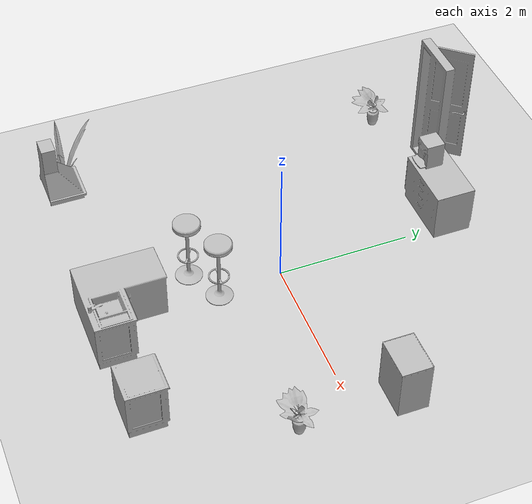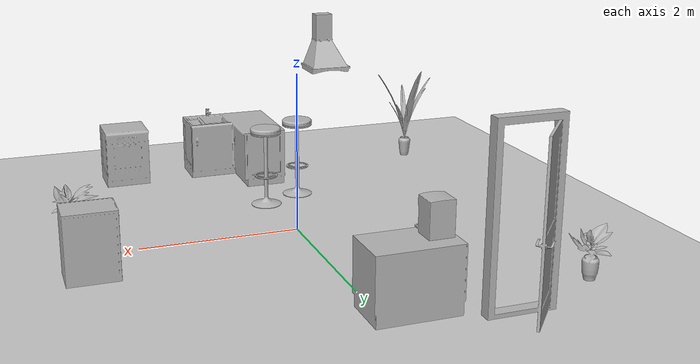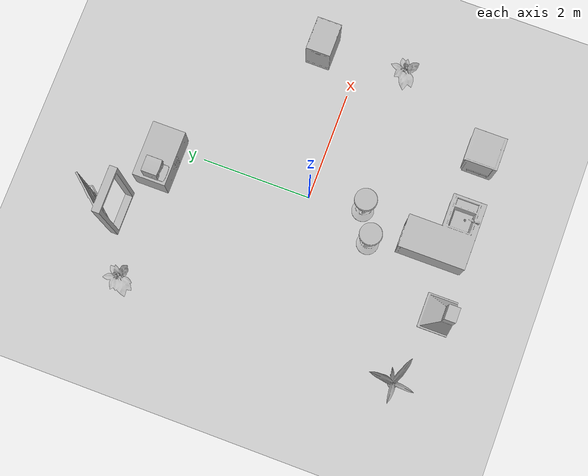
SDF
<sdf version="1.4">
 <world name="default">
  <light name="sun" type="directional">
   <pose>0 0 10 0 -0 0</pose>
   <diffuse>0.8 0.8 0.8 1</diffuse>
   <specular>0.2 0.2 0.2 1</specular>
   <attenuation>
    <range>1000</range>
    <constant>0.9</constant>
    <linear>0.01</linear>
    <quadratic>0.001</quadratic>
   </attenuation>
   <direction>-0.5 0.1 -0.9</direction>
  </light>
  <model name="ground_plane">
   <static>1</static>
   <link name="link">
    <collision name="collision">
     <geometry><plane><normal>0 0 1</normal><size>100 100</size></plane></geometry>
     <surface><friction><ode><mu>100</mu><mu2>50</mu2></ode></friction></surface>
    </collision>
    <visual name="visual">
     <cast_shadows>0</cast_shadows>
     <geometry><plane><normal>0 0 1</normal><size>100 100</size></plane></geometry>
     <material>
      <script><uri>file://media/materials/scripts/gazebo.material</uri><name>Gazebo/Grey</name></script>
     </material>
    </visual>
    <velocity_decay><linear>0</linear><angular>0</angular></velocity_decay>
   </link>
  </model>
  <physics type="ode">
   <max_step_size>0.001</max_step_size>
   <real_time_factor>1</real_time_factor>
   <real_time_update_rate>1000</real_time_update_rate>
   <gravity>0 0 -9.8</gravity>
  </physics>
  <scene><ambient>0.4 0.4 0.4 1</ambient><background>0.7 0.7 0.7 1</background><shadows>1</shadows></scene>
  <spherical_coordinates>
   <surface_model>EARTH_WGS84</surface_model>
   <latitude_deg>0</latitude_deg>
   <longitude_deg>0</longitude_deg>
   <elevation>0</elevation>
   <heading_deg>0</heading_deg>
  </spherical_coordinates>
  <model name="101_0">
   <pose>1.7178 -2.61481 0.03 0 -0 1.5708</pose>
   <static>1</static>
   <link name="link">
    <collision name="collision"><geometry><box><size>0.600001 0.600354 2</size></box></geometry></collision>
    <visual name="visual"><geometry><mesh><uri>model://101/101.dae</uri></mesh></geometry></visual>
    <velocity_decay><linear>0</linear><angular>0</angular></velocity_decay>
   </link>
  </model>
  <model name="241_0">
   <pose>-1.3635 -2.70864 1.41 0 -0 1.5708</pose>
   <static>1</static>
   <link name="link">
    <collision name="collision"><geometry><box><size>0.51 0.6 2</size></box></geometry></collision>
    <visual name="visual"><geometry><mesh><uri>model://241/241.dae</uri></mesh></geometry></visual>
    <velocity_decay><linear>0</linear><angular>0</angular></velocity_decay>
   </link>
  </model>
  <model name="219_0">
   <pose>2.64211 0.701846 0.03 0 -0 3.13662</pose>
   <static>1</static>
   <link name="link">
    <collision name="collision"><geometry><box><size>0.6115 0.45 2</size></box></geometry></collision>
    <visual name="visual"><geometry><mesh><uri>model://219/219.dae</uri></mesh></geometry></visual>
    <velocity_decay><linear>0</linear><angular>0</angular></velocity_decay>
   </link>
  </model>
  <model name="138_0">
   <pose>0.196501 -2.35322 0.03 0 -0 0</pose>
   <static>1</static>
   <link name="link">
    <collision name="collision"><geometry><box><size>1.2 1.2 2</size></box></geometry></collision>
    <visual name="visual"><geometry><mesh><uri>model://138/138.dae</uri></mesh></geometry></visual>
    <velocity_decay><linear>0</linear><angular>0</angular></velocity_decay>
   </link>
  </model>
  <model name="407_0">
   <pose>-0.3075 2.64261 0.03 0 0 -1.5708</pose>
   <static>1</static>
   <link name="link">
    <collision name="collision"><geometry><box><size>0.620691 1.00007 2</size></box></geometry></collision>
    <visual name="visual"><geometry><mesh><uri>model://407/407.dae</uri></mesh></geometry></visual>
    <velocity_decay><linear>0</linear><angular>0</angular></velocity_decay>
   </link>
  </model>
  <model name="88_0">
   <pose>-0.415501 -1.251 0.03 0 0 -0.396013</pose>
   <static>1</static>
   <link name="link">
    <collision name="collision"><geometry><box><size>0.40365 0.40365 2</size></box></geometry></collision>
    <visual name="visual"><geometry><mesh><uri>model://88/88.dae</uri></mesh></geometry></visual>
    <velocity_decay><linear>0</linear><angular>0</angular></velocity_decay>
   </link>
  </model>
  <model name="88_1">
   <pose>0.112501 -0.975001 0.03 0 -0 0</pose>
   <static>1</static>
   <link name="link">
    <collision name="collision"><geometry><box><size>0.40365 0.40365 2</size></box></geometry></collision>
    <visual name="visual"><geometry><mesh><uri>model://88/88.dae</uri></mesh></geometry></visual>
    <velocity_decay><linear>0</linear><angular>0</angular></velocity_decay>
   </link>
  </model>
  <model name="221_0">
   <pose>-0.617012 2.57246 0.81 0 0 -1.5708</pose>
   <static>1</static>
   <link name="link">
    <collision name="collision"><geometry><box><size>0.38 0.29 2</size></box></geometry></collision>
    <visual name="visual"><geometry><mesh><uri>model://221/221.dae</uri></mesh></geometry></visual>
    <velocity_decay><linear>0</linear><angular>0</angular></velocity_decay>
   </link>
  </model>
  <model name="130_0">
   <pose>-2.52054 2.6082 0.03 0 -0 0</pose>
   <static>1</static>
   <link name="link">
    <collision name="collision"><geometry><box><size>0.51716 0.566834 2</size></box></geometry></collision>
    <visual name="visual"><geometry><mesh><uri>model://130/130.dae</uri></mesh></geometry></visual>
    <velocity_decay><linear>0</linear><angular>0</angular></velocity_decay>
   </link>
  </model>
  <model name="130_1">
   <pose>2.6969 -0.815496 0.03 0 0 -0.482319</pose>
   <static>1</static>
   <link name="link">
    <collision name="collision"><geometry><box><size>0.51716 0.566834 2</size></box></geometry></collision>
    <visual name="visual"><geometry><mesh><uri>model://130/130.dae</uri></mesh></geometry></visual>
    <velocity_decay><linear>0</linear><angular>0</angular></velocity_decay>
   </link>
  </model>
  <model name="237_0">
   <pose>-2.58349 -2.47004 0.03 0 -0 0</pose>
   <static>1</static>
   <link name="link">
    <collision name="collision"><geometry><box><size>0.839248 0.825384 2</size></box></geometry></collision>
    <visual name="visual"><geometry><mesh><uri>model://237/237.dae</uri></mesh></geometry></visual>
    <velocity_decay><linear>0</linear><angular>0</angular></velocity_decay>
   </link>
  </model>
  <model name="122_0">
   <pose>-1.39682 3.01719 0 0 0 -1.57079</pose>
   <static>1</static>
   <link name="link">
    <collision name="collision"><geometry><box><size>0.650001 0.8 2</size></box></geometry></collision>
    <visual name="visual"><geometry><mesh><uri>model://122/122.dae</uri></mesh></geometry></visual>
    <velocity_decay><linear>0</linear><angular>0</angular></velocity_decay>
   </link>
  </model>
 </world>
</sdf>
